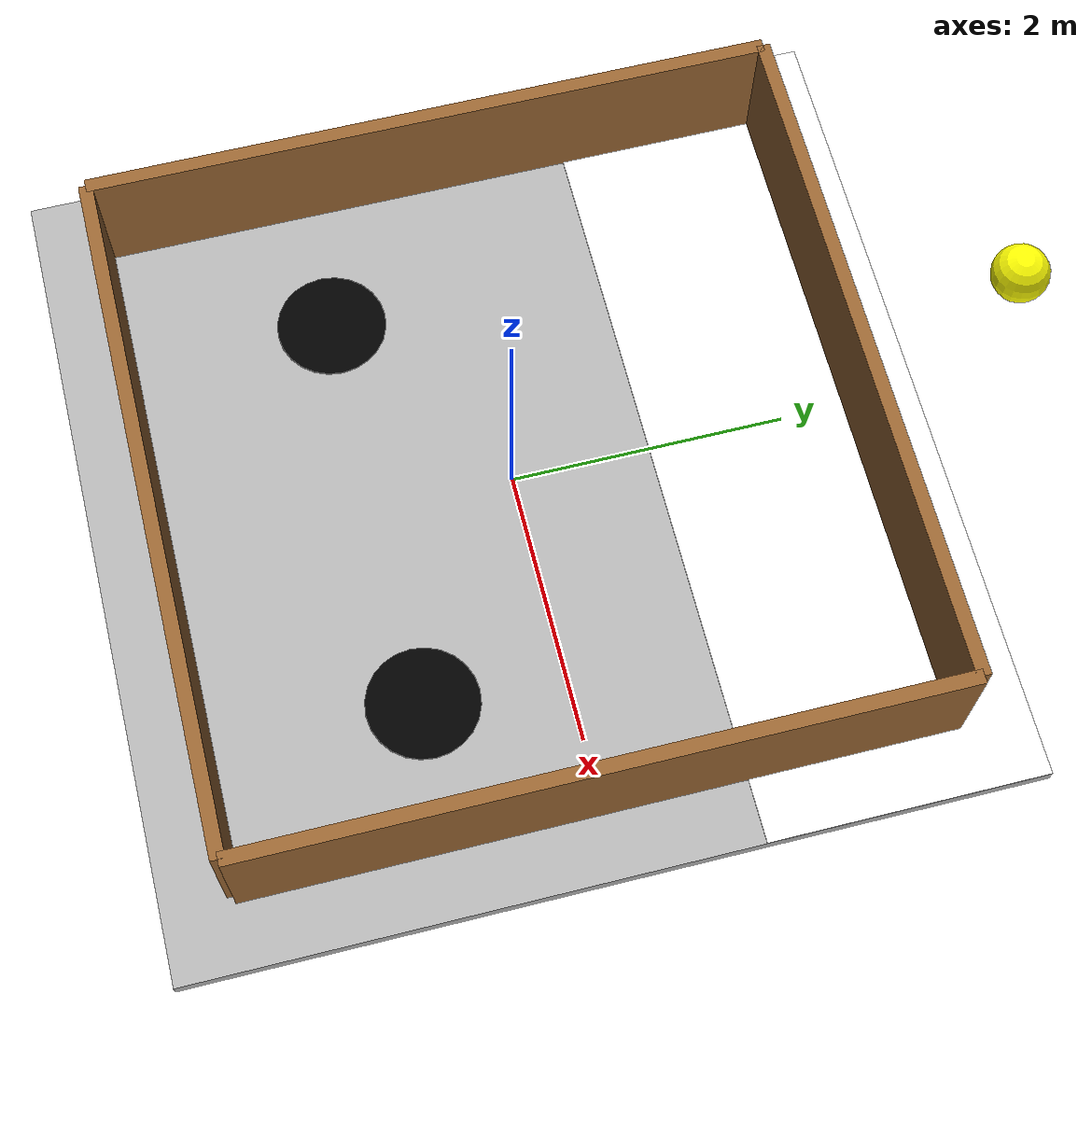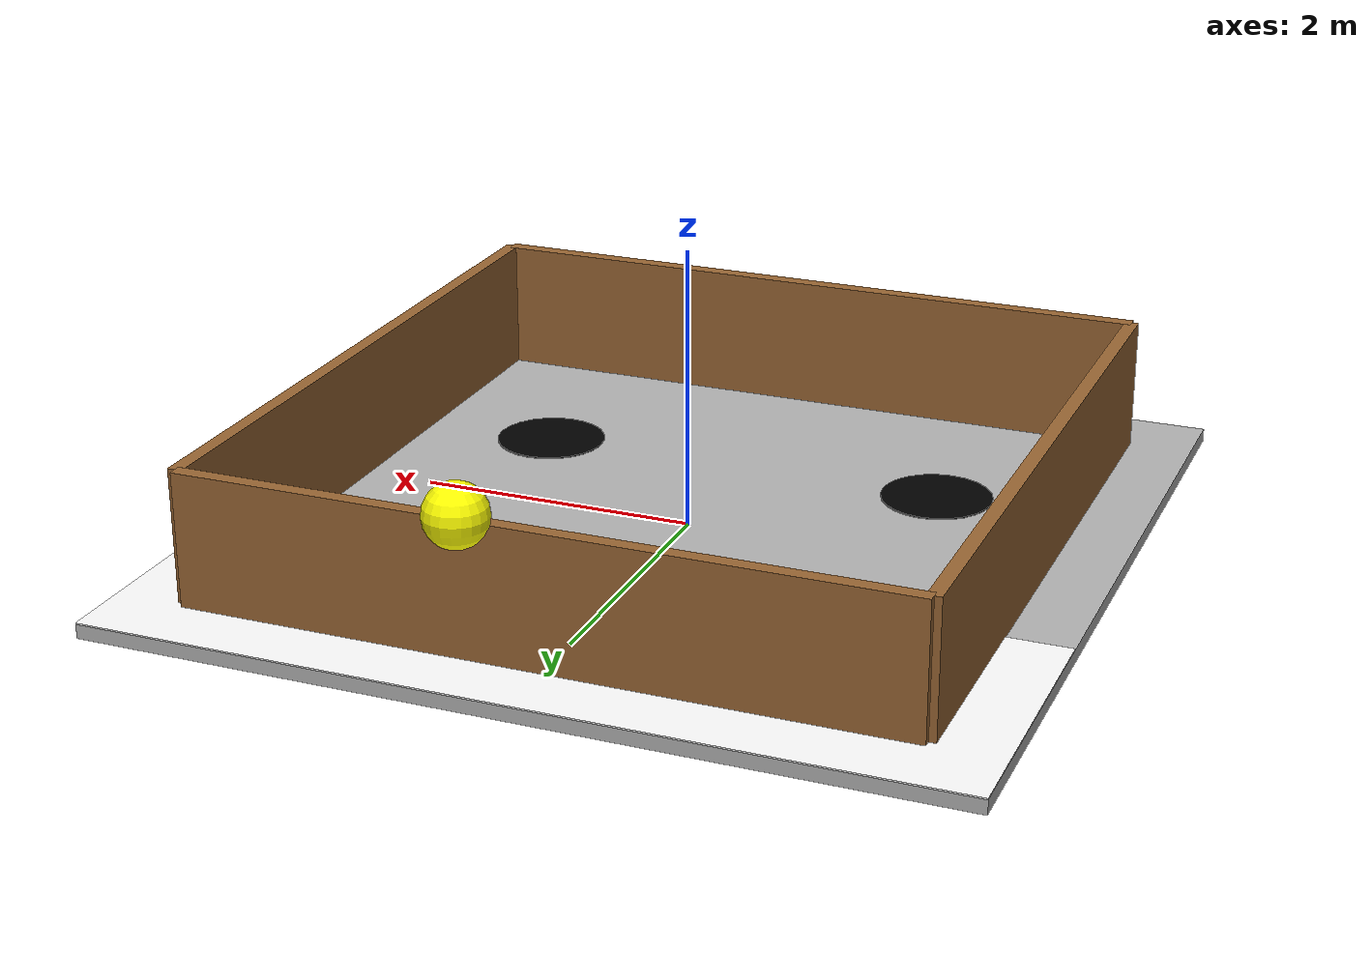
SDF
<?xml version='1.0' encoding='ASCII'?>
<sdf version='1.7'>
  <world name='mission'>

    <physics type="ode">
      <max_step_size>0.02</max_step_size>
      <real_time_factor>1.0</real_time_factor>
      <solver>
        <type>quick</type>
        <iters>25</iters>
        <sor>1.3</sor>
      </solver>
      <constraints>
        <contact_max_correcting_vel>200</contact_max_correcting_vel>
        <contact_surface_layer>0.01</contact_surface_layer>
      </constraints>
    </physics>

    <scene>
      <ambient>1 1 1 1</ambient>
      <background>1 1 1 1</background>
      <shadows>0</shadows>
      <grid>false</grid>
    </scene>

    <plugin name="gz::sim::systems::Physics" filename="gz-sim-physics-system" />
    <plugin name="gz::sim::systems::UserCommands" filename="gz-sim-user-commands-system" />
    <plugin name="gz::sim::systems::SceneBroadcaster" filename="gz-sim-scene-broadcaster-system" />
    <plugin name="gz::sim::systems::Contact" filename="gz-sim-contact-system" />
    <plugin name="gz::sim::systems::Sensors" filename="gz-sim-sensors-system">
        <render_engine>ogre2</render_engine>
    </plugin>

    <!-- Grey floor (thicker to avoid sinking) -->
    <model name="floor">
      <static>true</static>
      <pose>0 0 0 0 0 0</pose>
      <link name="link">
        <visual name="visual">
          <geometry>
            <box>
              <size>6 6 0.1</size> <!-- 6x6 m arena, 10 cm thick -->
            </box>
          </geometry>
          <material>
            <ambient>0.7 0.7 0.7 1</ambient>
            <diffuse>0.7 0.7 0.7 1</diffuse>
          </material>
        </visual>
        <collision name="collision">
          <geometry>
            <box>
              <size>6 6 0.1</size>
            </box>
          </geometry>
        </collision>
        <gazebo reference="collision">
          <friction>
            <ode>
              <mu>0.8</mu>
              <mu2>0.8</mu2>
              <slip1>0.01</slip1>
              <slip2>0.01</slip2>
            </ode>
          </friction>
        </gazebo>
      </link>
    </model>

    <!-- White patch on one half -->
    <model name="white_patch">
      <static>true</static>
      <pose>0 2 0.055 0 0 0</pose> <!-- Raised above thicker floor -->
      <link name="link">
        <visual name="visual">
          <geometry>
            <box>
              <size>6 2 0.01</size>
            </box>
          </geometry>
          <material>
            <ambient>1 1 1 1</ambient>
            <diffuse>1 1 1 1</diffuse>
          </material>
        </visual>
      </link>
    </model>

    <!-- Two black circular patches -->
    <model name="black_patch1">
      <static>true</static>
      <pose>-1.5 -1.0 0.055 0 0 0</pose>
      <link name="link">
        <visual name="visual">
          <geometry>
            <cylinder>
              <radius>0.4</radius>
              <length>0.01</length>
            </cylinder>
          </geometry>
          <material>
            <ambient>0 0 0 1</ambient>
            <diffuse>0 0 0 1</diffuse>
          </material>
        </visual>
      </link>
    </model>

    <model name="black_patch2">
      <static>true</static>
      <pose>1.5 -1.0 0.055 0 0 0</pose>
      <link name="link">
        <visual name="visual">
          <geometry>
            <cylinder>
              <radius>0.4</radius>
              <length>0.01</length>
            </cylinder>
          </geometry>
          <material>
            <ambient>0 0 0 1</ambient>
            <diffuse>0 0 0 1</diffuse>
          </material>
        </visual>
      </link>
    </model>

    <!-- Light source -->
    <model name="light_marker">
      <static>true</static>
      <pose>0 3.5 1.5 0 0 0</pose> <!-- above white patch -->
      <link name="link">
        <visual name="visual">
          <geometry>
            <sphere>
              <radius>0.2</radius>
            </sphere>
          </geometry>
          <material>
            <ambient>1 1 0 1</ambient>
            <diffuse>1 1 0 1</diffuse>
          </material>
        </visual>
      </link>
    </model>

    <!-- Square walls (5x5 m arena) -->
    <model name="walls">
      <static>true</static>
      <link name="link">
        <!-- North wall -->
        <visual name="wall_n">
          <pose>0 2.5 0.5 0 0 0</pose>
          <geometry><box><size>5 0.1 1</size></box></geometry>
          <material><ambient>0.6 0.4 0.2 1</ambient><diffuse>0.6 0.4 0.2 1</diffuse></material>
        </visual>
        <collision name="wall_n_col">
          <pose>0 2.5 0.5 0 0 0</pose>
          <geometry><box><size>5 0.1 1</size></box></geometry>
        </collision>

        <!-- East wall -->
        <visual name="wall_e">
          <pose>2.5 0 0.5 0 0 0</pose>
          <geometry><box><size>0.1 5 1</size></box></geometry>
          <material><ambient>0.6 0.4 0.2 1</ambient><diffuse>0.6 0.4 0.2 1</diffuse></material>
        </visual>
        <collision name="wall_e_col">
          <pose>2.5 0 0.5 0 0 0</pose>
          <geometry><box><size>0.1 5 1</size></box></geometry>
        </collision>

        <!-- South wall -->
        <visual name="wall_s">
          <pose>0 -2.5 0.5 0 0 0</pose>
          <geometry><box><size>5 0.1 1</size></box></geometry>
          <material><ambient>0.6 0.4 0.2 1</ambient><diffuse>0.6 0.4 0.2 1</diffuse></material>
        </visual>
        <collision name="wall_s_col">
          <pose>0 -2.5 0.5 0 0 0</pose>
          <geometry><box><size>5 0.1 1</size></box></geometry>
        </collision>

        <!-- West wall -->
        <visual name="wall_w">
          <pose>-2.5 0 0.5 0 0 0</pose>
          <geometry><box><size>0.1 5 1</size></box></geometry>
          <material><ambient>0.6 0.4 0.2 1</ambient><diffuse>0.6 0.4 0.2 1</diffuse></material>
        </visual>
        <collision name="wall_w_col">
          <pose>-2.5 0 0.5 0 0 0</pose>
          <geometry><box><size>0.1 5 1</size></box></geometry>
        </collision>

      </link>
    </model>

    <!-- Red ball target -->

    <!-- ArUco Marker 0 - Top wall, facing middle -->

    <!-- ArUco Marker 1 - Bottom wall, facing middle -->

    <!-- ArUco Marker 2 - Right wall, facing middle -->

  </world>
</sdf>
